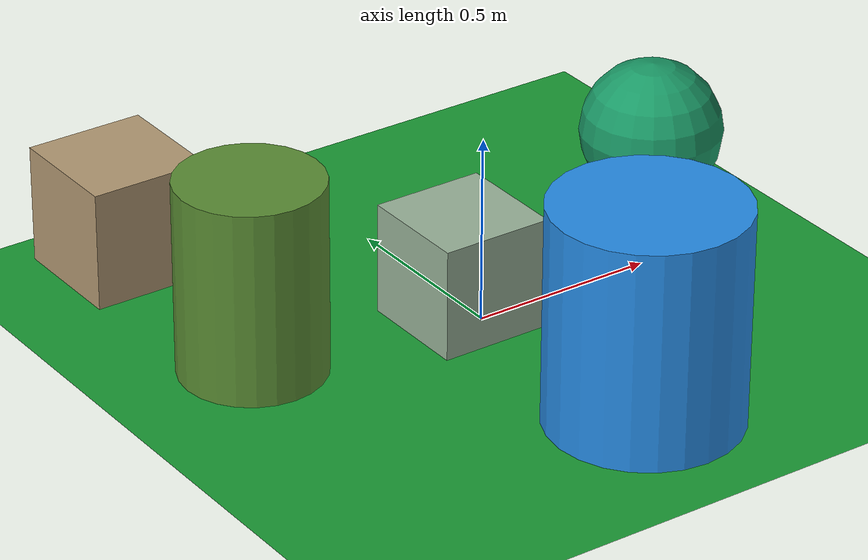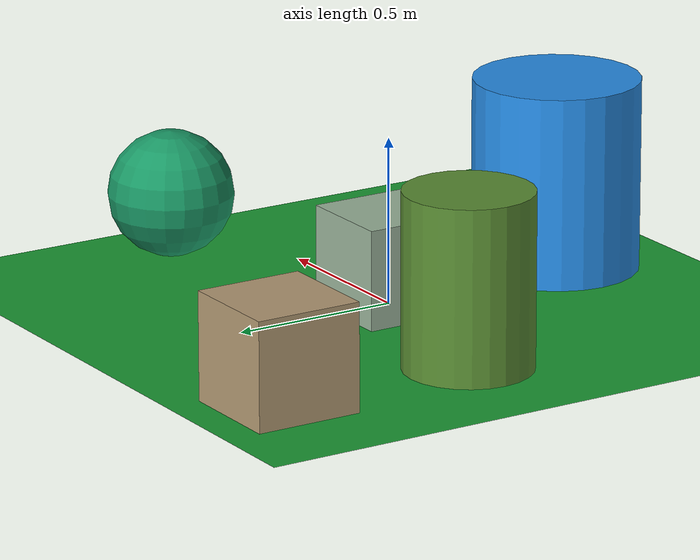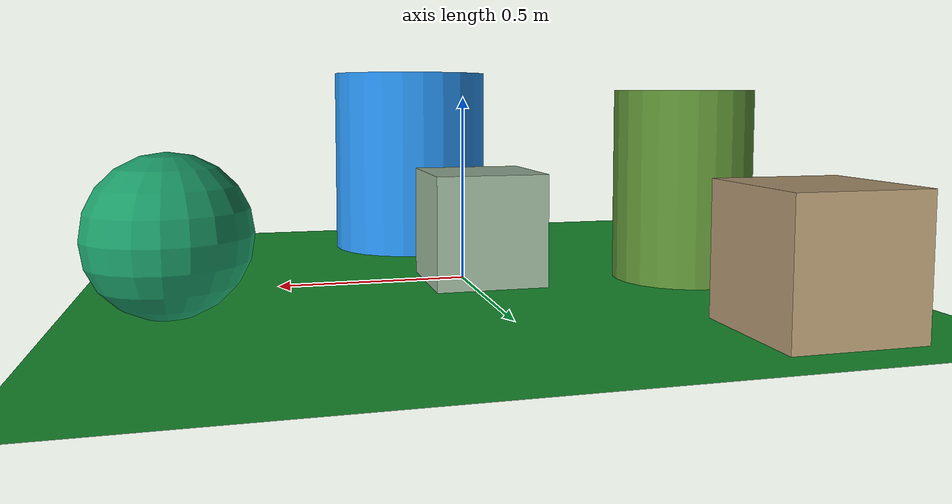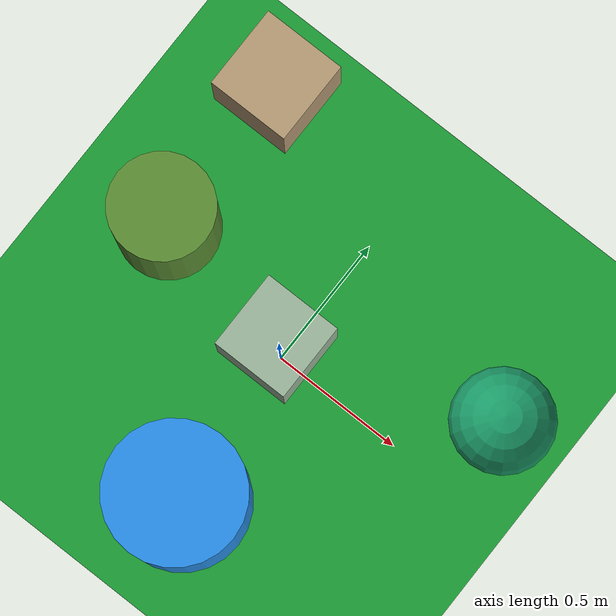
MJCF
<mujoco>
   <asset>
<texture type="skybox" builtin="gradient" rgb1="0.2 1.0 0.1" rgb2="0.8 0.4 1.0" width="256" height="256"/>
<texture name="checker_0" builtin="checker" type="2d" rgb1="0.2 0.1 1.0" rgb2="0.1 1.0 0.8" width="200" height="200"/>
<texture name="flat_1" builtin="flat" rgb1="0.1 0.6 0.4" rgb2="0.1 0.6 0.4"  width="200" height="200"/>
<texture name="checker_2" builtin="checker" type="2d" rgb1="0.4 0.3 0.2" rgb2="1.0 0.9 0.7" width="200" height="200"/>
<texture name="flat_3" builtin="flat" rgb1="0.6 0.7 0.6" rgb2="0.6 0.7 0.6"  width="200" height="200"/>
<texture name="checker_4" builtin="checker" type="2d" rgb1="0.3 0.1 0.0" rgb2="0.4 1.0 0.4" width="200" height="200"/><material name="checker_0_mat" reflectance="0" texrepeat="4 4" texture="checker_0" texuniform="false" />
<material name="flat_1_mat" reflectance="0" texture="flat_1" texuniform="true"/>
<material name="checker_2_mat" reflectance="0" texrepeat="9 9" texture="checker_2" texuniform="false" />
<material name="flat_3_mat" reflectance="0" texture="flat_3" texuniform="true"/>
<material name="checker_4_mat" reflectance="0" texrepeat="8 8" texture="checker_4" texuniform="false" />
   </asset>

   <worldbody>
      <light diffuse=".9 .9 .9" pos="0 0 3" dir="0 0 -1"/>
     <geom type="plane" size="1 1 0.1" rgba="0.1 0.6 0.2 1"/>
<geom type="cylinder" pos="0.04 -0.61 0.29" size="0.25 0.29 0.29" material="checker_0_mat" />
<geom type="sphere" pos="0.75 0.29 0.19" size="0.19 0.19 0.19" material="flat_1_mat" />
<geom type="box" pos="-0.6 0.74 0.16" size="0.16 0.16 0.16" material="checker_2_mat" />
<geom type="box" pos="-0.04 0.03 0.15" size="0.15 0.15 0.15" material="flat_3_mat" />
<geom type="cylinder" pos="-0.6 0.12 0.26" size="0.19 0.26 0.26" material="checker_4_mat" /><camera euler="60 0 180" fovy="60" name="camera_a" pos="0 -1.5 1"></camera>   </worldbody>
</mujoco>
